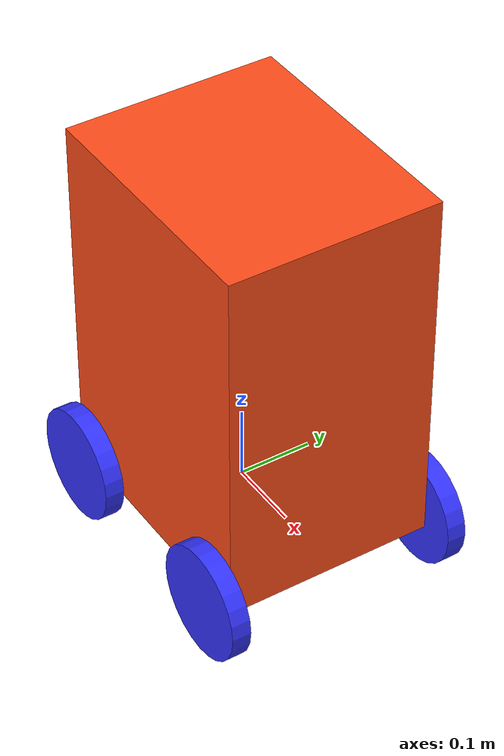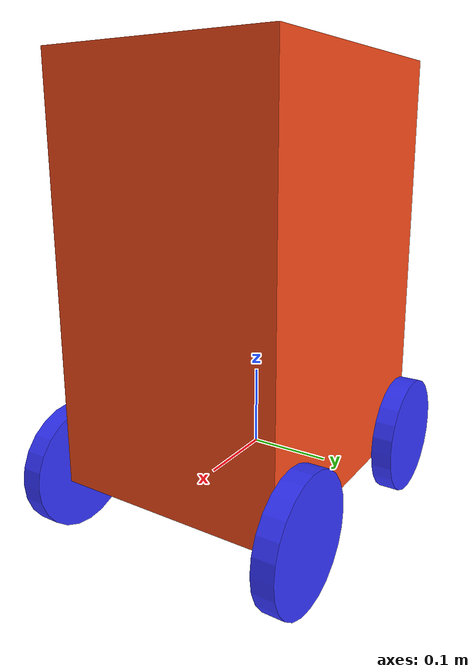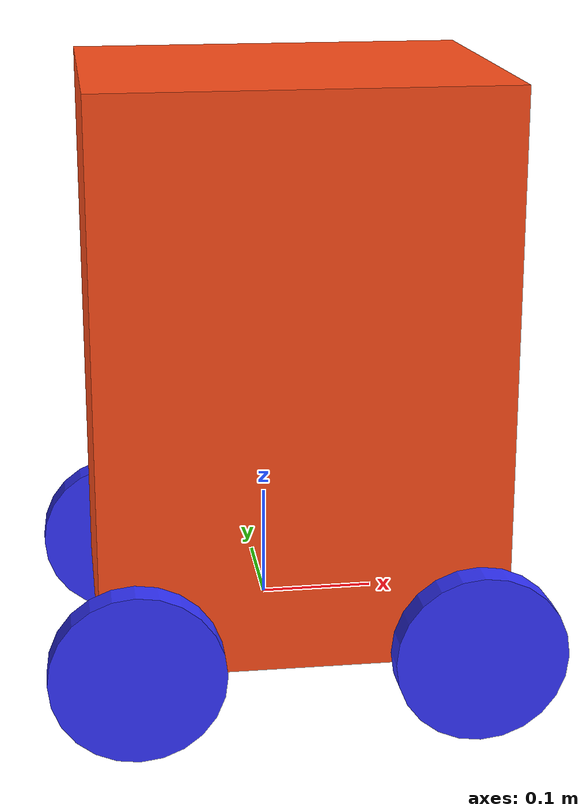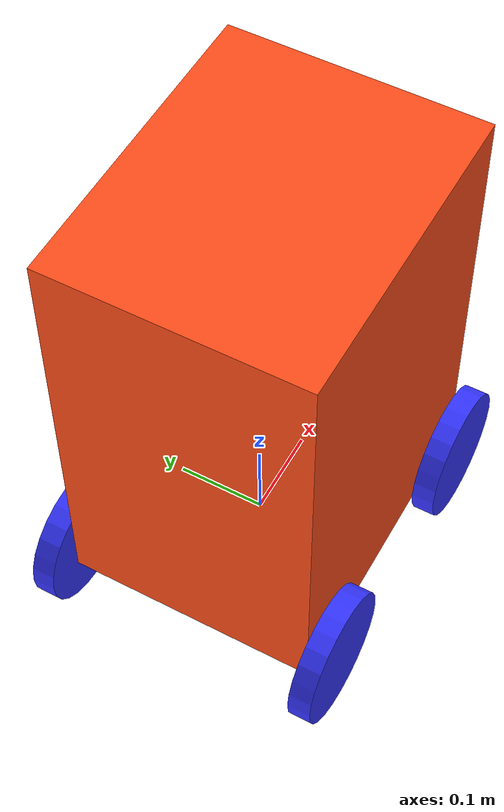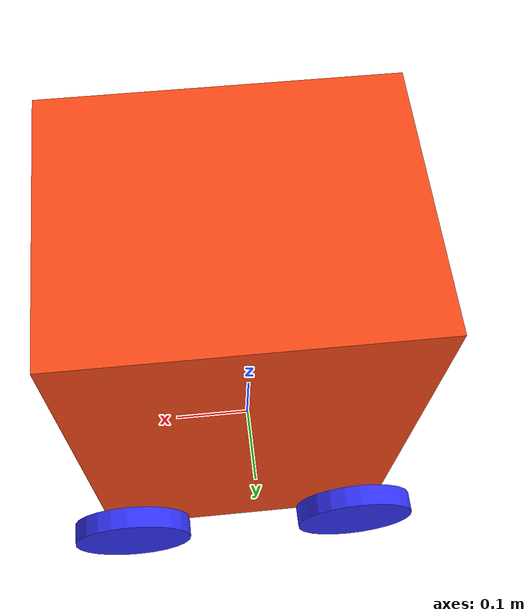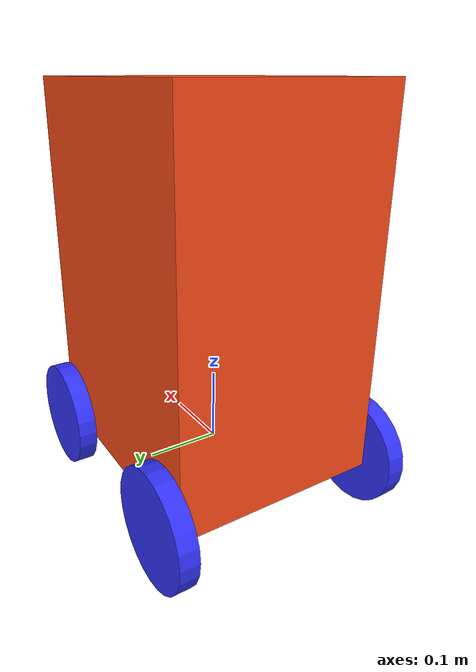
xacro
<?xml version="1.0"?>
<robot xmlns:xacro="http://www.ros.org/wiki/xacro" >

    <xacro:include filename="inertial_macros.xacro"/>

    <xacro:property name="chassis_length" value="0.3556"/>
    <xacro:property name="chassis_width" value="0.28575"/>
    <xacro:property name="chassis_height" value="0.5000625"/>
    <xacro:property name="chassis_mass" value="1.0"/>

    <xacro:property name="wheel_radius" value="0.0762"/>
    <xacro:property name="wheel_thickness" value="0.026"/>
    <xacro:property name="wheel_mass" value="0.05"/>
    <xacro:property name="wheel_offset_x" value="0.1571625"/>
    <xacro:property name="wheel_offset_y" value="0.136525"/>
    <xacro:property name="wheel_offset_z" value="0.01"/>

    <xacro:property name="caster_wheel_radius" value="0.01"/>
    <xacro:property name="caster_wheel_mass" value="0.01"/>
    <xacro:property name="caster_wheel_offset_x" value="0.075"/>
    <xacro:property name="caster_wheel_offset_z" value="${wheel_offset_z - wheel_radius + caster_wheel_radius}"/>

    <material name="white">
        <color rgba="1 1 1 1" />
    </material>

    <material name="orange">
        <color rgba="1 0.3 0.1 1"/>
    </material>

    <material name="blue">
        <color rgba="0.2 0.2 1 1"/>
    </material>

    <material name="black">
        <color rgba="0 0 0 1"/>
    </material>

    <material name="red">
        <color rgba="1 0 0 1"/>
    </material>

    <!-- BASE LINK -->

    <link name="base_link">

    </link>

    <!-- BASE_FOOTPRINT LINK -->

    <joint name="base_footprint_joint" type="fixed">
        <parent link="base_link"/>
        <child link="base_footprint"/>
        <origin xyz="0 0 0" rpy="0 0 0"/>
    </joint>

    <link name="base_footprint">
    </link>

    <!-- CHASSIS LINK -->

    <joint name="chassis_joint" type="fixed">
        <parent link="base_link"/>
        <child link="chassis"/>
        <origin xyz="${-wheel_offset_x} 0 ${-wheel_offset_z}"/>
    </joint>

    <link name="chassis">
        <visual>
            <origin xyz="${chassis_length/2} 0 ${chassis_height/2}"/>
            <geometry>
                <box size="${chassis_length} ${chassis_width} ${chassis_height}"/>
            </geometry>
            <material name="orange"/>
        </visual>
        <collision>
            <origin xyz="${chassis_length/2} 0 ${chassis_height/2}"/>
            <geometry>
                <box size="${chassis_length} ${chassis_width} ${chassis_height}"/>
            </geometry>
        </collision>
        <xacro:inertial_box mass="0.5" x="${chassis_length}" y="${chassis_width}" z="${chassis_height}">
            <origin xyz="${chassis_length/2} 0 ${chassis_height/2}" rpy="0 0 0"/>
        </xacro:inertial_box>
    </link>

    <gazebo reference="chassis">
        <material>Gazebo/Orange</material>
    </gazebo>

    <!-- LEFT FRONT WHEEL LINK -->

    <joint name="left_wheel_joint" type="continuous">
        <parent link="base_link"/>
        <child link="left_wheel"/>
        <origin xyz="0.17 0.1571625 0" rpy="-${pi/2} 0 0" />
        <axis xyz="0 0 1"/>
    </joint>

    <link name="left_wheel">
        <visual>
            <geometry>
                <cylinder radius="${wheel_radius}" length="${wheel_thickness}"/>
            </geometry>
            <material name="blue"/>
        </visual>
        <collision>
            <geometry>
                <sphere radius="${wheel_radius}"/>
            </geometry>
        </collision>
        <xacro:inertial_cylinder mass="${wheel_mass}" length="${wheel_thickness}" radius="${wheel_radius}">
            <origin xyz="0 0 0" rpy="0 0 0"/>
        </xacro:inertial_cylinder>
    </link>

    <gazebo reference="left_wheel">
        <material>Gazebo/Blue</material>
    </gazebo>

<!-- LEFT REAR WHEEL LINK -->

    <joint name="left_rear_wheel_joint" type="continuous">
        <parent link="base_link"/>
        <child link="left_rear_wheel"/>
        <origin xyz="-0.127 0.1571625 0" rpy="-${pi/2} 0 0" />
        <axis xyz="0 0 1"/>
    </joint>

    <link name="left_rear_wheel">
        <visual>
            <geometry>
                <cylinder radius="${wheel_radius}" length="${wheel_thickness}"/>
            </geometry>
            <material name="blue"/>
        </visual>
        <collision>
            <geometry>
                <sphere radius="${wheel_radius}"/>
            </geometry>
        </collision>
        <xacro:inertial_cylinder mass="${wheel_mass}" length="${wheel_thickness}" radius="${wheel_radius}">
            <origin xyz="0 0 0" rpy="0 0 0"/>
        </xacro:inertial_cylinder>
    </link>

    <gazebo reference="left_rear_wheel">
        <material>Gazebo/Blue</material>
    </gazebo>

    <!-- RIGHT WHEEL LINK -->

    <joint name="right_wheel_joint" type="continuous">
        <parent link="base_link"/>
        <child link="right_wheel"/>
        <origin xyz="0.17 -0.1571625 0" rpy="${pi/2} 0 0" />
        <axis xyz="0 0 -1"/>
    </joint>

    <link name="right_wheel">
        <visual>
            <geometry>
                <cylinder radius="${wheel_radius}" length="${wheel_thickness}"/>
            </geometry>
            <material name="blue"/>
        </visual>
        <collision>
            <geometry>
                <sphere radius="${wheel_radius}"/>
            </geometry>
        </collision>
        <xacro:inertial_cylinder mass="${wheel_mass}" length="${wheel_thickness}" radius="${wheel_radius}">
            <origin xyz="0 0 0" rpy="0 0 0"/>
        </xacro:inertial_cylinder>
    </link>

    <!-- RIGHT REAR WHEEL LINK -->

    <joint name="right_rear_wheel_joint" type="continuous">
        <parent link="base_link"/>
        <child link="right_rear_wheel"/>
        <origin xyz="-0.127 -0.1571625 0" rpy="${pi/2} 0 0" />
        <axis xyz="0 0 -1"/>
    </joint>

    <link name="right_rear_wheel">
        <visual>
            <geometry>
                <cylinder radius="${wheel_radius}" length="${wheel_thickness}"/>
            </geometry>
            <material name="blue"/>
        </visual>
        <collision>
            <geometry>
                <sphere radius="${wheel_radius}"/>
            </geometry>
        </collision>
        <xacro:inertial_cylinder mass="${wheel_mass}" length="${wheel_thickness}" radius="${wheel_radius}">
            <origin xyz="0 0 0" rpy="0 0 0"/>
        </xacro:inertial_cylinder>
    </link>

    <gazebo reference="right_rear_wheel">
        <material>Gazebo/Blue</material>
    </gazebo>

</robot>
